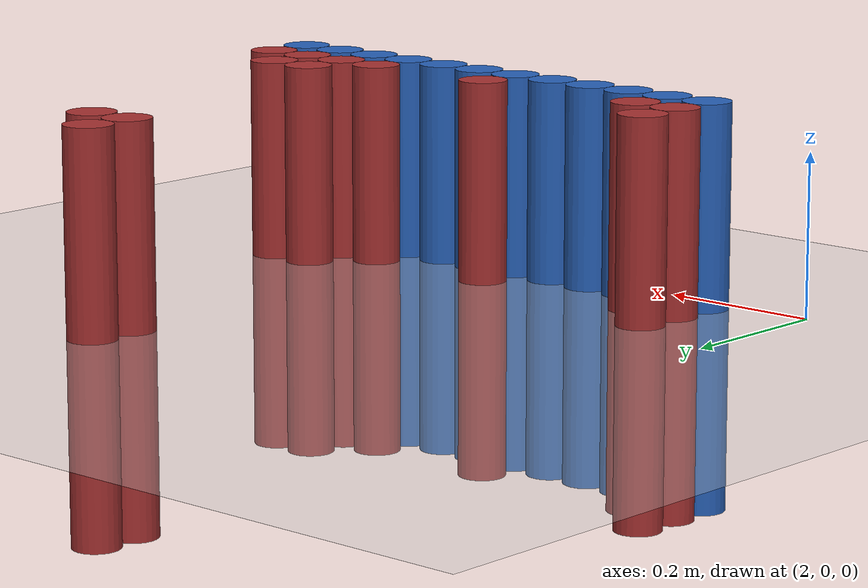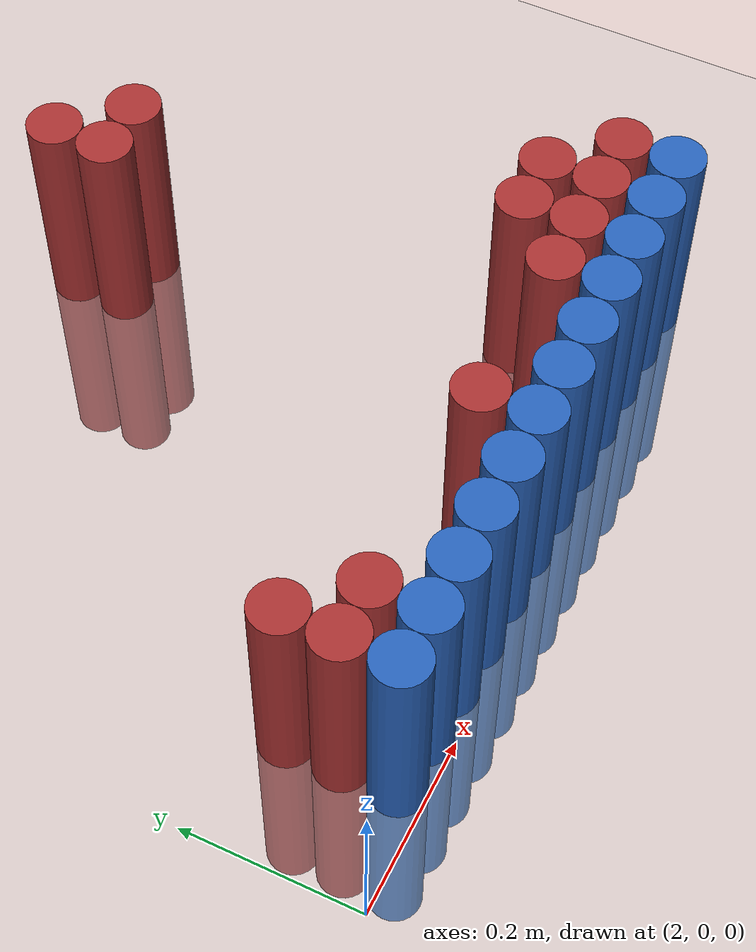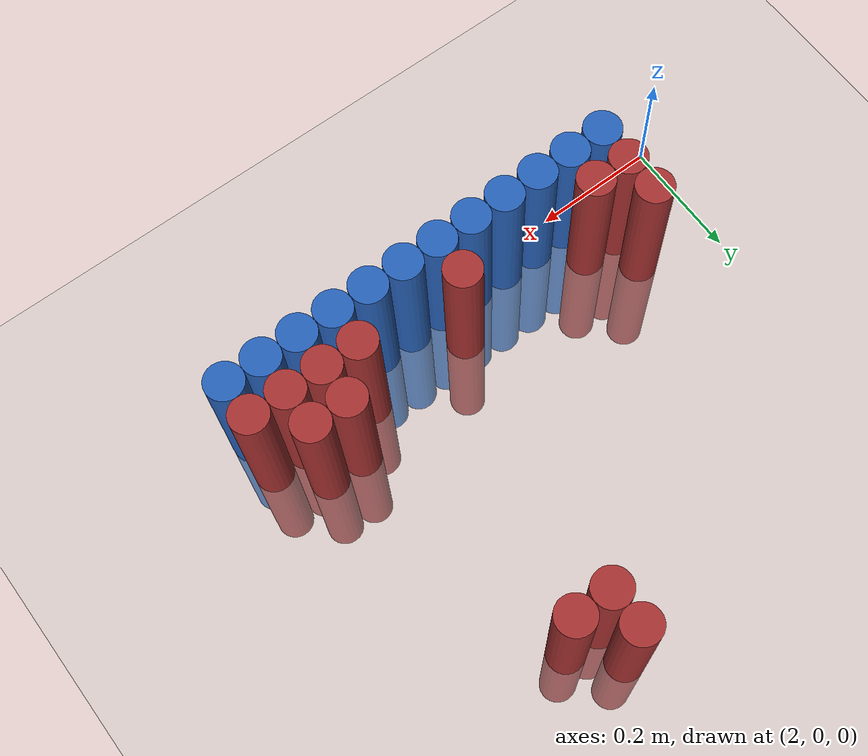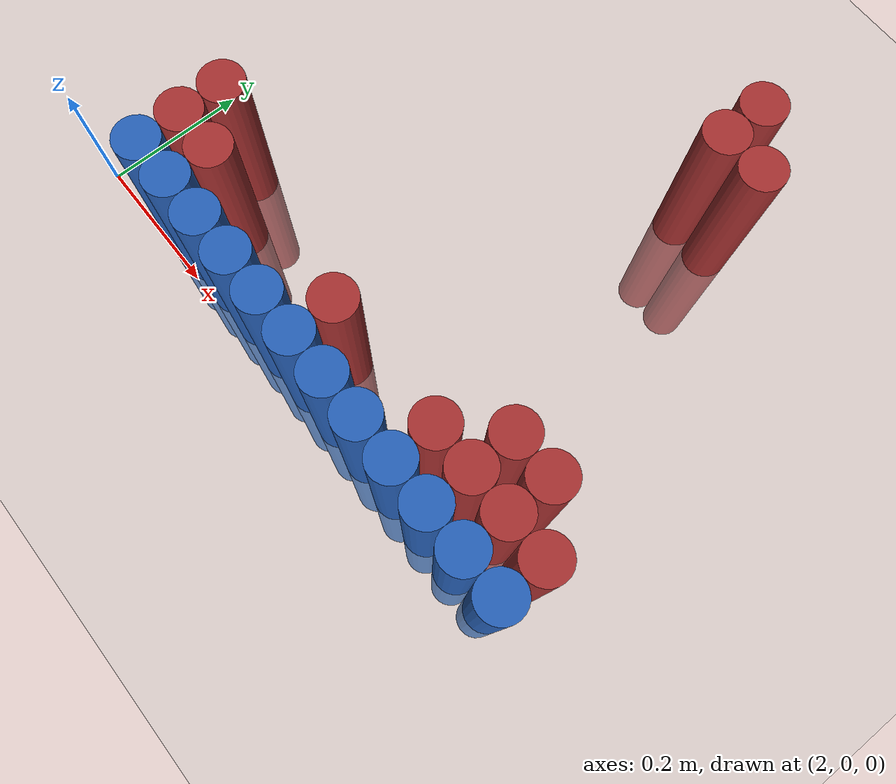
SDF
<sdf version="1.6">
 <world name="default">
  <model name="ground_plane">
   <static>1</static>
   <link name="link">
    <collision name="collision">
     <geometry><plane><normal>0 0 1</normal><size>100 100</size></plane></geometry>
     <surface><friction><ode><mu>100</mu><mu2>50</mu2></ode></friction></surface>
    </collision>
    <visual name="visual">
     <cast_shadows>0</cast_shadows>
     <geometry><plane><normal>0 0 1</normal><size>100 100</size></plane></geometry>
     <material>
      <script><uri>file://media/materials/scripts/gazebo.material</uri><name>Gazebo/Grey</name></script>
     </material>
    </visual>
   </link>
  </model>
  <model name="unit_cylinder_146">
   <static>1</static>
   <pose>2.550000 0.630000 0.000000 0.000000 0.000000 0.000000</pose>
   <link name="link">
    <inertial>
     <mass>1</mass>
     <inertia><ixx>0.145833</ixx><ixy>0</ixy><ixz>0</ixz><iyy>0.145833</iyy><iyz>0</iyz><izz>0.125</izz></inertia>
    </inertial>
    <collision name="collision">
     <geometry><cylinder><radius>0.030000</radius><length>0.5</length></cylinder></geometry>
    </collision>
    <visual name="visual">
     <geometry><cylinder><radius>0.030000</radius><length>0.5</length></cylinder></geometry>
     <material>
      <ambient>0.648000 0.192000 0.192000 1</ambient>
      <diffuse>0.648000 0.192000 0.192000 1</diffuse>
     </material>
     <material>
      <script><name>Gazebo/Grey</name><uri>file://media/materials/scripts/gazebo.material</uri></script>
     </material>
    </visual>
   </link>
  </model>
  <model name="unit_cylinder_147">
   <static>1</static>
   <pose>2.550000 0.570000 0.000000 0.000000 0.000000 0.000000</pose>
   <link name="link">
    <inertial>
     <mass>1</mass>
     <inertia><ixx>0.145833</ixx><ixy>0</ixy><ixz>0</ixz><iyy>0.145833</iyy><iyz>0</iyz><izz>0.125</izz></inertia>
    </inertial>
    <collision name="collision">
     <geometry><cylinder><radius>0.030000</radius><length>0.5</length></cylinder></geometry>
    </collision>
    <visual name="visual">
     <geometry><cylinder><radius>0.030000</radius><length>0.5</length></cylinder></geometry>
     <material>
      <ambient>0.648000 0.192000 0.192000 1</ambient>
      <diffuse>0.648000 0.192000 0.192000 1</diffuse>
     </material>
     <material>
      <script><name>Gazebo/Grey</name><uri>file://media/materials/scripts/gazebo.material</uri></script>
     </material>
    </visual>
   </link>
  </model>
  <model name="unit_cylinder_148">
   <static>1</static>
   <pose>2.610000 0.570000 0.000000 0.000000 0.000000 0.000000</pose>
   <link name="link">
    <inertial>
     <mass>1</mass>
     <inertia><ixx>0.145833</ixx><ixy>0</ixy><ixz>0</ixz><iyy>0.145833</iyy><iyz>0</iyz><izz>0.125</izz></inertia>
    </inertial>
    <collision name="collision">
     <geometry><cylinder><radius>0.030000</radius><length>0.5</length></cylinder></geometry>
    </collision>
    <visual name="visual">
     <geometry><cylinder><radius>0.030000</radius><length>0.5</length></cylinder></geometry>
     <material>
      <ambient>0.648000 0.192000 0.192000 1</ambient>
      <diffuse>0.648000 0.192000 0.192000 1</diffuse>
     </material>
     <material>
      <script><name>Gazebo/Grey</name><uri>file://media/materials/scripts/gazebo.material</uri></script>
     </material>
    </visual>
   </link>
  </model>
  <model name="unit_cylinder_155">
   <static>1</static>
   <pose>2.130000 0.150000 0.000000 0.000000 0.000000 0.000000</pose>
   <link name="link">
    <inertial>
     <mass>1</mass>
     <inertia><ixx>0.145833</ixx><ixy>0</ixy><ixz>0</ixz><iyy>0.145833</iyy><iyz>0</iyz><izz>0.125</izz></inertia>
    </inertial>
    <collision name="collision">
     <geometry><cylinder><radius>0.030000</radius><length>0.5</length></cylinder></geometry>
    </collision>
    <visual name="visual">
     <geometry><cylinder><radius>0.030000</radius><length>0.5</length></cylinder></geometry>
     <material>
      <ambient>0.648000 0.192000 0.192000 1</ambient>
      <diffuse>0.648000 0.192000 0.192000 1</diffuse>
     </material>
     <material>
      <script><name>Gazebo/Grey</name><uri>file://media/materials/scripts/gazebo.material</uri></script>
     </material>
    </visual>
   </link>
  </model>
  <model name="unit_cylinder_156">
   <static>1</static>
   <pose>2.670000 0.150000 0.000000 0.000000 0.000000 0.000000</pose>
   <link name="link">
    <inertial>
     <mass>1</mass>
     <inertia><ixx>0.145833</ixx><ixy>0</ixy><ixz>0</ixz><iyy>0.145833</iyy><iyz>0</iyz><izz>0.125</izz></inertia>
    </inertial>
    <collision name="collision">
     <geometry><cylinder><radius>0.030000</radius><length>0.5</length></cylinder></geometry>
    </collision>
    <visual name="visual">
     <geometry><cylinder><radius>0.030000</radius><length>0.5</length></cylinder></geometry>
     <material>
      <ambient>0.648000 0.192000 0.192000 1</ambient>
      <diffuse>0.648000 0.192000 0.192000 1</diffuse>
     </material>
     <material>
      <script><name>Gazebo/Grey</name><uri>file://media/materials/scripts/gazebo.material</uri></script>
     </material>
    </visual>
   </link>
  </model>
  <model name="unit_cylinder_157">
   <static>1</static>
   <pose>2.730000 0.150000 0.000000 0.000000 0.000000 0.000000</pose>
   <link name="link">
    <inertial>
     <mass>1</mass>
     <inertia><ixx>0.145833</ixx><ixy>0</ixy><ixz>0</ixz><iyy>0.145833</iyy><iyz>0</iyz><izz>0.125</izz></inertia>
    </inertial>
    <collision name="collision">
     <geometry><cylinder><radius>0.030000</radius><length>0.5</length></cylinder></geometry>
    </collision>
    <visual name="visual">
     <geometry><cylinder><radius>0.030000</radius><length>0.5</length></cylinder></geometry>
     <material>
      <ambient>0.648000 0.192000 0.192000 1</ambient>
      <diffuse>0.648000 0.192000 0.192000 1</diffuse>
     </material>
     <material>
      <script><name>Gazebo/Grey</name><uri>file://media/materials/scripts/gazebo.material</uri></script>
     </material>
    </visual>
   </link>
  </model>
  <model name="unit_cylinder_160">
   <static>1</static>
   <pose>2.130000 0.090000 0.000000 0.000000 0.000000 0.000000</pose>
   <link name="link">
    <inertial>
     <mass>1</mass>
     <inertia><ixx>0.145833</ixx><ixy>0</ixy><ixz>0</ixz><iyy>0.145833</iyy><iyz>0</iyz><izz>0.125</izz></inertia>
    </inertial>
    <collision name="collision">
     <geometry><cylinder><radius>0.030000</radius><length>0.5</length></cylinder></geometry>
    </collision>
    <visual name="visual">
     <geometry><cylinder><radius>0.030000</radius><length>0.5</length></cylinder></geometry>
     <material>
      <ambient>0.648000 0.192000 0.192000 1</ambient>
      <diffuse>0.648000 0.192000 0.192000 1</diffuse>
     </material>
     <material>
      <script><name>Gazebo/Grey</name><uri>file://media/materials/scripts/gazebo.material</uri></script>
     </material>
    </visual>
   </link>
  </model>
  <model name="unit_cylinder_161">
   <static>1</static>
   <pose>2.190000 0.090000 0.000000 0.000000 0.000000 0.000000</pose>
   <link name="link">
    <inertial>
     <mass>1</mass>
     <inertia><ixx>0.145833</ixx><ixy>0</ixy><ixz>0</ixz><iyy>0.145833</iyy><iyz>0</iyz><izz>0.125</izz></inertia>
    </inertial>
    <collision name="collision">
     <geometry><cylinder><radius>0.030000</radius><length>0.5</length></cylinder></geometry>
    </collision>
    <visual name="visual">
     <geometry><cylinder><radius>0.030000</radius><length>0.5</length></cylinder></geometry>
     <material>
      <ambient>0.648000 0.192000 0.192000 1</ambient>
      <diffuse>0.648000 0.192000 0.192000 1</diffuse>
     </material>
     <material>
      <script><name>Gazebo/Grey</name><uri>file://media/materials/scripts/gazebo.material</uri></script>
     </material>
    </visual>
   </link>
  </model>
  <model name="unit_cylinder_162">
   <static>1</static>
   <pose>2.430000 0.090000 0.000000 0.000000 0.000000 0.000000</pose>
   <link name="link">
    <inertial>
     <mass>1</mass>
     <inertia><ixx>0.145833</ixx><ixy>0</ixy><ixz>0</ixz><iyy>0.145833</iyy><iyz>0</iyz><izz>0.125</izz></inertia>
    </inertial>
    <collision name="collision">
     <geometry><cylinder><radius>0.030000</radius><length>0.5</length></cylinder></geometry>
    </collision>
    <visual name="visual">
     <geometry><cylinder><radius>0.030000</radius><length>0.5</length></cylinder></geometry>
     <material>
      <ambient>0.648000 0.192000 0.192000 1</ambient>
      <diffuse>0.648000 0.192000 0.192000 1</diffuse>
     </material>
     <material>
      <script><name>Gazebo/Grey</name><uri>file://media/materials/scripts/gazebo.material</uri></script>
     </material>
    </visual>
   </link>
  </model>
  <model name="unit_cylinder_163">
   <static>1</static>
   <pose>2.610000 0.090000 0.000000 0.000000 0.000000 0.000000</pose>
   <link name="link">
    <inertial>
     <mass>1</mass>
     <inertia><ixx>0.145833</ixx><ixy>0</ixy><ixz>0</ixz><iyy>0.145833</iyy><iyz>0</iyz><izz>0.125</izz></inertia>
    </inertial>
    <collision name="collision">
     <geometry><cylinder><radius>0.030000</radius><length>0.5</length></cylinder></geometry>
    </collision>
    <visual name="visual">
     <geometry><cylinder><radius>0.030000</radius><length>0.5</length></cylinder></geometry>
     <material>
      <ambient>0.648000 0.192000 0.192000 1</ambient>
      <diffuse>0.648000 0.192000 0.192000 1</diffuse>
     </material>
     <material>
      <script><name>Gazebo/Grey</name><uri>file://media/materials/scripts/gazebo.material</uri></script>
     </material>
    </visual>
   </link>
  </model>
  <model name="unit_cylinder_164">
   <static>1</static>
   <pose>2.670000 0.090000 0.000000 0.000000 0.000000 0.000000</pose>
   <link name="link">
    <inertial>
     <mass>1</mass>
     <inertia><ixx>0.145833</ixx><ixy>0</ixy><ixz>0</ixz><iyy>0.145833</iyy><iyz>0</iyz><izz>0.125</izz></inertia>
    </inertial>
    <collision name="collision">
     <geometry><cylinder><radius>0.030000</radius><length>0.5</length></cylinder></geometry>
    </collision>
    <visual name="visual">
     <geometry><cylinder><radius>0.030000</radius><length>0.5</length></cylinder></geometry>
     <material>
      <ambient>0.648000 0.192000 0.192000 1</ambient>
      <diffuse>0.648000 0.192000 0.192000 1</diffuse>
     </material>
     <material>
      <script><name>Gazebo/Grey</name><uri>file://media/materials/scripts/gazebo.material</uri></script>
     </material>
    </visual>
   </link>
  </model>
  <model name="unit_cylinder_165">
   <static>1</static>
   <pose>2.730000 0.090000 0.000000 0.000000 0.000000 0.000000</pose>
   <link name="link">
    <inertial>
     <mass>1</mass>
     <inertia><ixx>0.145833</ixx><ixy>0</ixy><ixz>0</ixz><iyy>0.145833</iyy><iyz>0</iyz><izz>0.125</izz></inertia>
    </inertial>
    <collision name="collision">
     <geometry><cylinder><radius>0.030000</radius><length>0.5</length></cylinder></geometry>
    </collision>
    <visual name="visual">
     <geometry><cylinder><radius>0.030000</radius><length>0.5</length></cylinder></geometry>
     <material>
      <ambient>0.648000 0.192000 0.192000 1</ambient>
      <diffuse>0.648000 0.192000 0.192000 1</diffuse>
     </material>
     <material>
      <script><name>Gazebo/Grey</name><uri>file://media/materials/scripts/gazebo.material</uri></script>
     </material>
    </visual>
   </link>
  </model>
  <model name="unit_cylinder_166">
   <static>1</static>
   <pose>2.790000 0.090000 0.000000 0.000000 0.000000 0.000000</pose>
   <link name="link">
    <inertial>
     <mass>1</mass>
     <inertia><ixx>0.145833</ixx><ixy>0</ixy><ixz>0</ixz><iyy>0.145833</iyy><iyz>0</iyz><izz>0.125</izz></inertia>
    </inertial>
    <collision name="collision">
     <geometry><cylinder><radius>0.030000</radius><length>0.5</length></cylinder></geometry>
    </collision>
    <visual name="visual">
     <geometry><cylinder><radius>0.030000</radius><length>0.5</length></cylinder></geometry>
     <material>
      <ambient>0.648000 0.192000 0.192000 1</ambient>
      <diffuse>0.648000 0.192000 0.192000 1</diffuse>
     </material>
     <material>
      <script><name>Gazebo/Grey</name><uri>file://media/materials/scripts/gazebo.material</uri></script>
     </material>
    </visual>
   </link>
  </model>
  <model name="unit_cylinder_171">
   <static>1</static>
   <pose>2.130000 0.030000 0.000000 0.000000 0.000000 0.000000</pose>
   <link name="link">
    <inertial>
     <mass>1</mass>
     <inertia><ixx>0.145833</ixx><ixy>0</ixy><ixz>0</ixz><iyy>0.145833</iyy><iyz>0</iyz><izz>0.125</izz></inertia>
    </inertial>
    <collision name="collision">
     <geometry><cylinder><radius>0.030000</radius><length>0.5</length></cylinder></geometry>
    </collision>
    <visual name="visual">
     <geometry><cylinder><radius>0.030000</radius><length>0.5</length></cylinder></geometry>
     <material>
      <ambient>0.152000 0.379000 0.720000 1</ambient>
      <diffuse>0.152000 0.379000 0.720000 1</diffuse>
     </material>
     <material>
      <script><name>Gazebo/Grey</name><uri>file://media/materials/scripts/gazebo.material</uri></script>
     </material>
    </visual>
   </link>
  </model>
  <model name="unit_cylinder_172">
   <static>1</static>
   <pose>2.190000 0.030000 0.000000 0.000000 0.000000 0.000000</pose>
   <link name="link">
    <inertial>
     <mass>1</mass>
     <inertia><ixx>0.145833</ixx><ixy>0</ixy><ixz>0</ixz><iyy>0.145833</iyy><iyz>0</iyz><izz>0.125</izz></inertia>
    </inertial>
    <collision name="collision">
     <geometry><cylinder><radius>0.030000</radius><length>0.5</length></cylinder></geometry>
    </collision>
    <visual name="visual">
     <geometry><cylinder><radius>0.030000</radius><length>0.5</length></cylinder></geometry>
     <material>
      <ambient>0.152000 0.379000 0.720000 1</ambient>
      <diffuse>0.152000 0.379000 0.720000 1</diffuse>
     </material>
     <material>
      <script><name>Gazebo/Grey</name><uri>file://media/materials/scripts/gazebo.material</uri></script>
     </material>
    </visual>
   </link>
  </model>
  <model name="unit_cylinder_173">
   <static>1</static>
   <pose>2.250000 0.030000 0.000000 0.000000 0.000000 0.000000</pose>
   <link name="link">
    <inertial>
     <mass>1</mass>
     <inertia><ixx>0.145833</ixx><ixy>0</ixy><ixz>0</ixz><iyy>0.145833</iyy><iyz>0</iyz><izz>0.125</izz></inertia>
    </inertial>
    <collision name="collision">
     <geometry><cylinder><radius>0.030000</radius><length>0.5</length></cylinder></geometry>
    </collision>
    <visual name="visual">
     <geometry><cylinder><radius>0.030000</radius><length>0.5</length></cylinder></geometry>
     <material>
      <ambient>0.152000 0.379000 0.720000 1</ambient>
      <diffuse>0.152000 0.379000 0.720000 1</diffuse>
     </material>
     <material>
      <script><name>Gazebo/Grey</name><uri>file://media/materials/scripts/gazebo.material</uri></script>
     </material>
    </visual>
   </link>
  </model>
  <model name="unit_cylinder_174">
   <static>1</static>
   <pose>2.310000 0.030000 0.000000 0.000000 0.000000 0.000000</pose>
   <link name="link">
    <inertial>
     <mass>1</mass>
     <inertia><ixx>0.145833</ixx><ixy>0</ixy><ixz>0</ixz><iyy>0.145833</iyy><iyz>0</iyz><izz>0.125</izz></inertia>
    </inertial>
    <collision name="collision">
     <geometry><cylinder><radius>0.030000</radius><length>0.5</length></cylinder></geometry>
    </collision>
    <visual name="visual">
     <geometry><cylinder><radius>0.030000</radius><length>0.5</length></cylinder></geometry>
     <material>
      <ambient>0.152000 0.379000 0.720000 1</ambient>
      <diffuse>0.152000 0.379000 0.720000 1</diffuse>
     </material>
     <material>
      <script><name>Gazebo/Grey</name><uri>file://media/materials/scripts/gazebo.material</uri></script>
     </material>
    </visual>
   </link>
  </model>
  <model name="unit_cylinder_175">
   <static>1</static>
   <pose>2.370000 0.030000 0.000000 0.000000 0.000000 0.000000</pose>
   <link name="link">
    <inertial>
     <mass>1</mass>
     <inertia><ixx>0.145833</ixx><ixy>0</ixy><ixz>0</ixz><iyy>0.145833</iyy><iyz>0</iyz><izz>0.125</izz></inertia>
    </inertial>
    <collision name="collision">
     <geometry><cylinder><radius>0.030000</radius><length>0.5</length></cylinder></geometry>
    </collision>
    <visual name="visual">
     <geometry><cylinder><radius>0.030000</radius><length>0.5</length></cylinder></geometry>
     <material>
      <ambient>0.152000 0.379000 0.720000 1</ambient>
      <diffuse>0.152000 0.379000 0.720000 1</diffuse>
     </material>
     <material>
      <script><name>Gazebo/Grey</name><uri>file://media/materials/scripts/gazebo.material</uri></script>
     </material>
    </visual>
   </link>
  </model>
  <model name="unit_cylinder_176">
   <static>1</static>
   <pose>2.430000 0.030000 0.000000 0.000000 0.000000 0.000000</pose>
   <link name="link">
    <inertial>
     <mass>1</mass>
     <inertia><ixx>0.145833</ixx><ixy>0</ixy><ixz>0</ixz><iyy>0.145833</iyy><iyz>0</iyz><izz>0.125</izz></inertia>
    </inertial>
    <collision name="collision">
     <geometry><cylinder><radius>0.030000</radius><length>0.5</length></cylinder></geometry>
    </collision>
    <visual name="visual">
     <geometry><cylinder><radius>0.030000</radius><length>0.5</length></cylinder></geometry>
     <material>
      <ambient>0.152000 0.379000 0.720000 1</ambient>
      <diffuse>0.152000 0.379000 0.720000 1</diffuse>
     </material>
     <material>
      <script><name>Gazebo/Grey</name><uri>file://media/materials/scripts/gazebo.material</uri></script>
     </material>
    </visual>
   </link>
  </model>
  <model name="unit_cylinder_177">
   <static>1</static>
   <pose>2.490000 0.030000 0.000000 0.000000 0.000000 0.000000</pose>
   <link name="link">
    <inertial>
     <mass>1</mass>
     <inertia><ixx>0.145833</ixx><ixy>0</ixy><ixz>0</ixz><iyy>0.145833</iyy><iyz>0</iyz><izz>0.125</izz></inertia>
    </inertial>
    <collision name="collision">
     <geometry><cylinder><radius>0.030000</radius><length>0.5</length></cylinder></geometry>
    </collision>
    <visual name="visual">
     <geometry><cylinder><radius>0.030000</radius><length>0.5</length></cylinder></geometry>
     <material>
      <ambient>0.152000 0.379000 0.720000 1</ambient>
      <diffuse>0.152000 0.379000 0.720000 1</diffuse>
     </material>
     <material>
      <script><name>Gazebo/Grey</name><uri>file://media/materials/scripts/gazebo.material</uri></script>
     </material>
    </visual>
   </link>
  </model>
  <model name="unit_cylinder_178">
   <static>1</static>
   <pose>2.550000 0.030000 0.000000 0.000000 0.000000 0.000000</pose>
   <link name="link">
    <inertial>
     <mass>1</mass>
     <inertia><ixx>0.145833</ixx><ixy>0</ixy><ixz>0</ixz><iyy>0.145833</iyy><iyz>0</iyz><izz>0.125</izz></inertia>
    </inertial>
    <collision name="collision">
     <geometry><cylinder><radius>0.030000</radius><length>0.5</length></cylinder></geometry>
    </collision>
    <visual name="visual">
     <geometry><cylinder><radius>0.030000</radius><length>0.5</length></cylinder></geometry>
     <material>
      <ambient>0.152000 0.379000 0.720000 1</ambient>
      <diffuse>0.152000 0.379000 0.720000 1</diffuse>
     </material>
     <material>
      <script><name>Gazebo/Grey</name><uri>file://media/materials/scripts/gazebo.material</uri></script>
     </material>
    </visual>
   </link>
  </model>
  <model name="unit_cylinder_179">
   <static>1</static>
   <pose>2.610000 0.030000 0.000000 0.000000 0.000000 0.000000</pose>
   <link name="link">
    <inertial>
     <mass>1</mass>
     <inertia><ixx>0.145833</ixx><ixy>0</ixy><ixz>0</ixz><iyy>0.145833</iyy><iyz>0</iyz><izz>0.125</izz></inertia>
    </inertial>
    <collision name="collision">
     <geometry><cylinder><radius>0.030000</radius><length>0.5</length></cylinder></geometry>
    </collision>
    <visual name="visual">
     <geometry><cylinder><radius>0.030000</radius><length>0.5</length></cylinder></geometry>
     <material>
      <ambient>0.152000 0.379000 0.720000 1</ambient>
      <diffuse>0.152000 0.379000 0.720000 1</diffuse>
     </material>
     <material>
      <script><name>Gazebo/Grey</name><uri>file://media/materials/scripts/gazebo.material</uri></script>
     </material>
    </visual>
   </link>
  </model>
  <model name="unit_cylinder_180">
   <static>1</static>
   <pose>2.670000 0.030000 0.000000 0.000000 0.000000 0.000000</pose>
   <link name="link">
    <inertial>
     <mass>1</mass>
     <inertia><ixx>0.145833</ixx><ixy>0</ixy><ixz>0</ixz><iyy>0.145833</iyy><iyz>0</iyz><izz>0.125</izz></inertia>
    </inertial>
    <collision name="collision">
     <geometry><cylinder><radius>0.030000</radius><length>0.5</length></cylinder></geometry>
    </collision>
    <visual name="visual">
     <geometry><cylinder><radius>0.030000</radius><length>0.5</length></cylinder></geometry>
     <material>
      <ambient>0.152000 0.379000 0.720000 1</ambient>
      <diffuse>0.152000 0.379000 0.720000 1</diffuse>
     </material>
     <material>
      <script><name>Gazebo/Grey</name><uri>file://media/materials/scripts/gazebo.material</uri></script>
     </material>
    </visual>
   </link>
  </model>
  <model name="unit_cylinder_181">
   <static>1</static>
   <pose>2.730000 0.030000 0.000000 0.000000 0.000000 0.000000</pose>
   <link name="link">
    <inertial>
     <mass>1</mass>
     <inertia><ixx>0.145833</ixx><ixy>0</ixy><ixz>0</ixz><iyy>0.145833</iyy><iyz>0</iyz><izz>0.125</izz></inertia>
    </inertial>
    <collision name="collision">
     <geometry><cylinder><radius>0.030000</radius><length>0.5</length></cylinder></geometry>
    </collision>
    <visual name="visual">
     <geometry><cylinder><radius>0.030000</radius><length>0.5</length></cylinder></geometry>
     <material>
      <ambient>0.152000 0.379000 0.720000 1</ambient>
      <diffuse>0.152000 0.379000 0.720000 1</diffuse>
     </material>
     <material>
      <script><name>Gazebo/Grey</name><uri>file://media/materials/scripts/gazebo.material</uri></script>
     </material>
    </visual>
   </link>
  </model>
  <model name="unit_cylinder_182">
   <static>1</static>
   <pose>2.790000 0.030000 0.000000 0.000000 0.000000 0.000000</pose>
   <link name="link">
    <inertial>
     <mass>1</mass>
     <inertia><ixx>0.145833</ixx><ixy>0</ixy><ixz>0</ixz><iyy>0.145833</iyy><iyz>0</iyz><izz>0.125</izz></inertia>
    </inertial>
    <collision name="collision">
     <geometry><cylinder><radius>0.030000</radius><length>0.5</length></cylinder></geometry>
    </collision>
    <visual name="visual">
     <geometry><cylinder><radius>0.030000</radius><length>0.5</length></cylinder></geometry>
     <material>
      <ambient>0.152000 0.379000 0.720000 1</ambient>
      <diffuse>0.152000 0.379000 0.720000 1</diffuse>
     </material>
     <material>
      <script><name>Gazebo/Grey</name><uri>file://media/materials/scripts/gazebo.material</uri></script>
     </material>
    </visual>
   </link>
  </model>
 </world>
</sdf>
